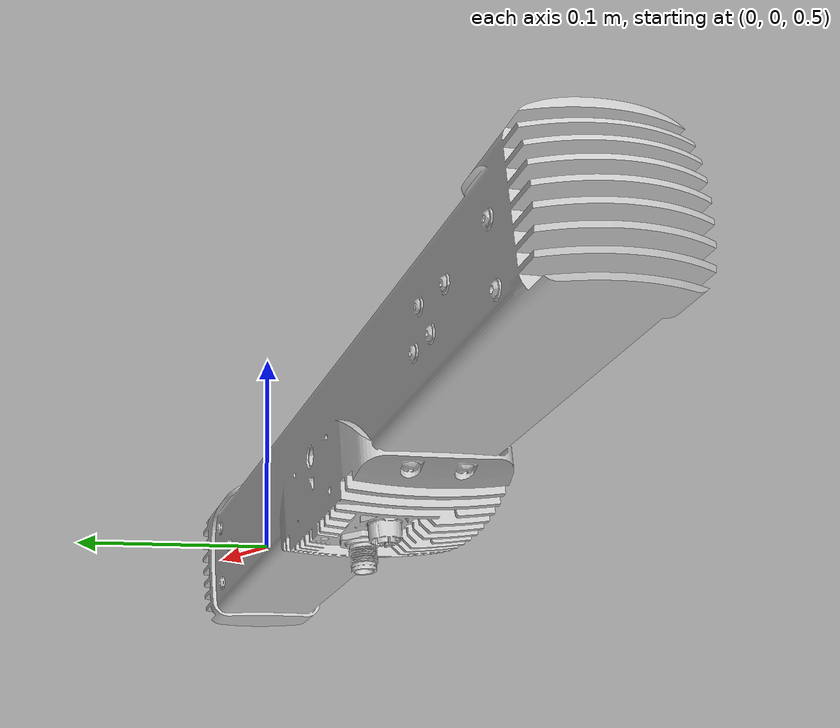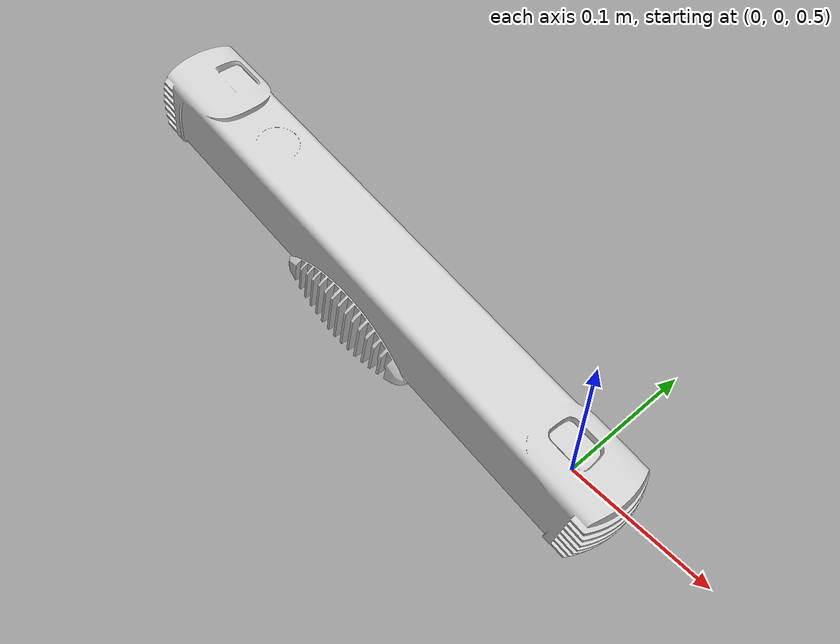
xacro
<?xml version="1.0" ?>
<robot name="phoxi_camera" xmlns:xacro="http://ros.org/wiki/xacro">

    <xacro:arg name="model" default="PhoXi_3D_Scanner-M-gen3"/>
    <xacro:property name="model" value="$(arg model)"/>

    <xacro:include filename="$(find phoxi_camera_description)/urdf/models/${model}.xacro" />

    <link name="base_link"/>

    <link name="phoxi_camera_sensor">
        <visual>
            <origin xyz="0 0 0" rpy="0 0 0" />
            <geometry>
                <mesh filename="${visual_mesh}" scale="0.001 0.001 0.001"/>
            </geometry>
            <material name="Gray"><color rgba="0.8 0.8 0.8 1"/></material>
        </visual>
        <collision>
            <origin xyz="0 0 0" rpy="0 0 0" />
            <geometry>
                <mesh filename="${collision_mesh}" scale="0.001 0.001 0.001"/>
            </geometry>
        </collision>
        <inertial>
          <mass value="0.5" />
          <inertia ixx="0.001" ixy="0.0" ixz="0.0" iyy="0.001" iyz="0.0" izz="0.001" />
        </inertial>
    </link>

    <joint name="base_to_camera_joint" type="fixed">
        <parent link="base_link"/>
        <child link="phoxi_camera_sensor"/>
        <origin xyz="0 0 0.5" rpy="0 0 0" />
    </joint>

</robot>

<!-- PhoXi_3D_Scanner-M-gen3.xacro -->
<robot xmlns:xacro="http://ros.org/wiki/xacro">
    <!-- Properties for PhoXi 3D Scanner M gen3 -->
    <xacro:property name="visual_mesh" value="package://phoxi_camera_description/meshes/visual/PhoXi_3D_Scanner-M-gen3.stl" />
    <xacro:property name="collision_mesh" value="package://phoxi_camera_description/meshes/collision/PhoXi_3D_Scanner-M-gen3-col.stl" />
</robot>
